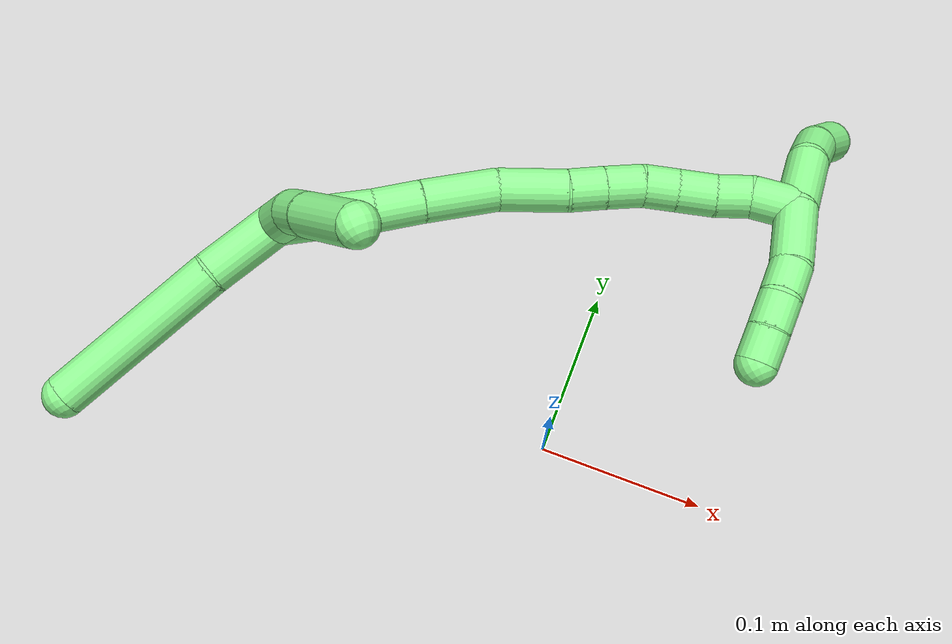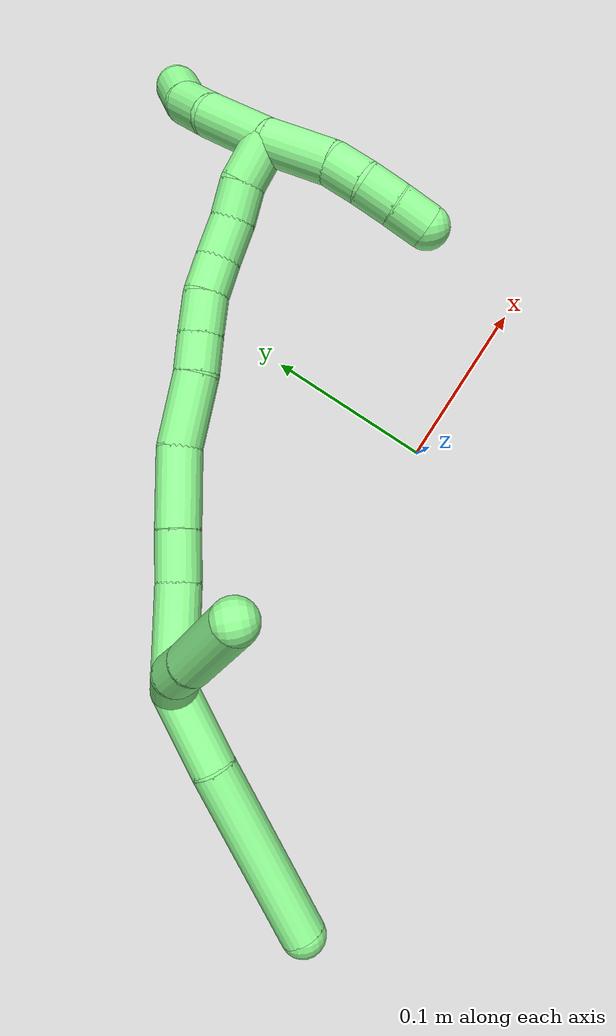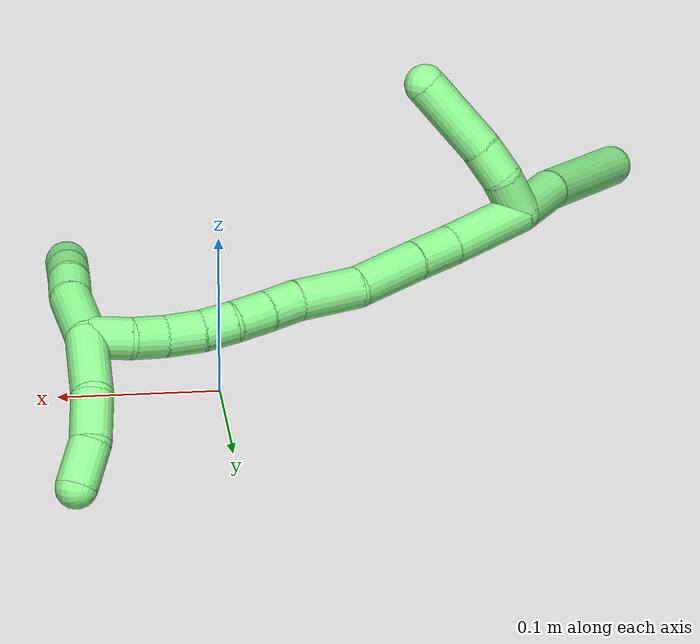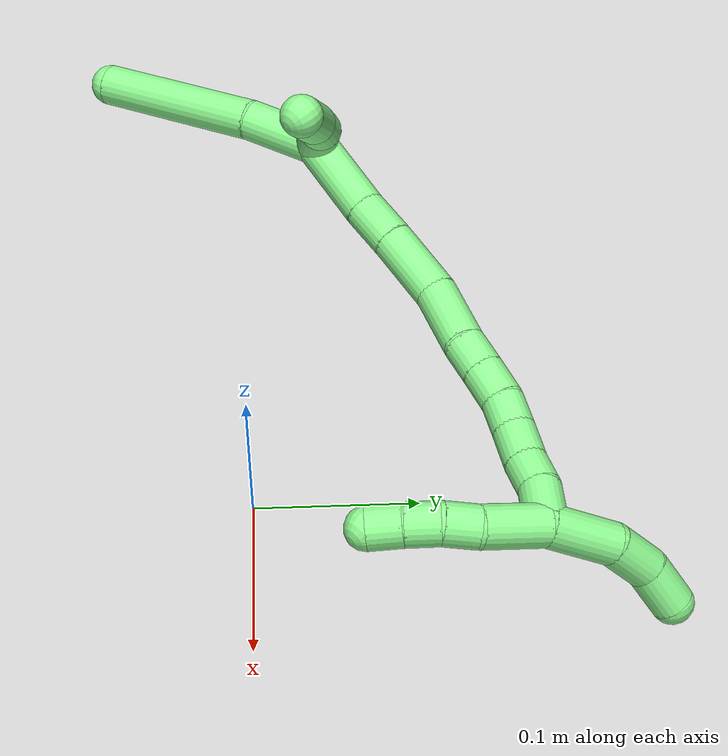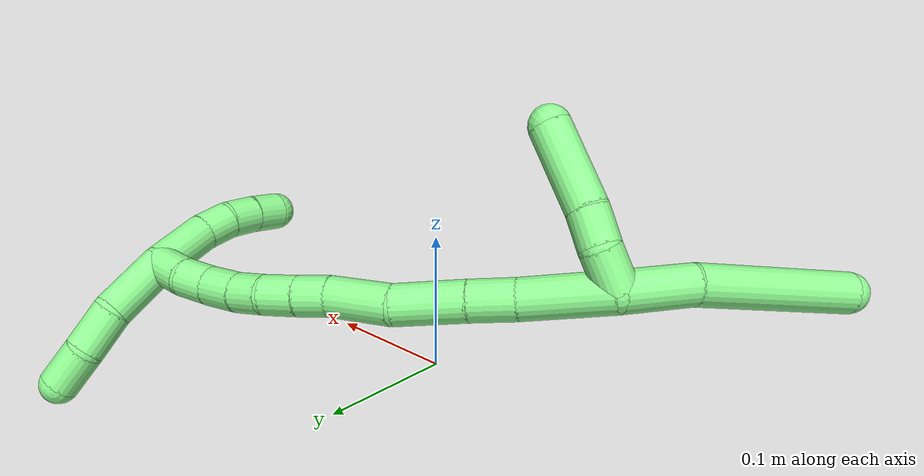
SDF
<sdf version="1.7">
 <world name="default">
  <model name="13">
   <static>0</static>
   <link name="13">
    <collision name="collision-cylinder-e_1_2_8">
     <pose>-0.018952 -0.011166 -0.006001 2.06396 -0.981265 -1.45852</pose>
     <geometry><cylinder><radius>0.0125</radius><length>0.045602</length></cylinder></geometry>
     <surface>
      <friction><ode><mu>1.16</mu><mu2>1.16</mu2><slip1>0</slip1><slip2>0</slip2></ode></friction>
      <contact><ode><kp>1e+06</kp><kd>1</kd><max_vel>0</max_vel><min_depth>0.001</min_depth></ode></contact>
     </surface>
    </collision>
    <visual name="visual-cylinder-e_1_2_8">
     <pose>-0.018952 -0.011166 -0.006001 2.06396 -0.981265 -1.45852</pose>
     <geometry><cylinder><radius>0.0125</radius><length>0.045602</length></cylinder></geometry>
     <material><ambient>0.564706 0.984314 0.572549 1</ambient></material>
    </visual>
    <collision name="collision-cylinder-e_2_8_6">
     <pose>-0.084639 -0.04089 -0.02601 2.21735 -1.10915 -1.78708</pose>
     <geometry><cylinder><radius>0.0125</radius><length>0.104398</length></cylinder></geometry>
     <surface>
      <friction><ode><mu>1.16</mu><mu2>1.16</mu2><slip1>0</slip1><slip2>0</slip2></ode></friction>
      <contact><ode><kp>1e+06</kp><kd>1</kd><max_vel>0</max_vel><min_depth>0.001</min_depth></ode></contact>
     </surface>
    </collision>
    <visual name="visual-cylinder-e_2_8_6">
     <pose>-0.084639 -0.04089 -0.02601 2.21735 -1.10915 -1.78708</pose>
     <geometry><cylinder><radius>0.0125</radius><length>0.104398</length></cylinder></geometry>
     <material><ambient>0.564706 0.984314 0.572549 1</ambient></material>
    </visual>
    <collision name="collision-cylinder-e_1_2_9">
     <pose>0.010587 -0.007589 -0.00234 1.86984 0.927205 1.19064</pose>
     <geometry><cylinder><radius>0.0125</radius><length>0.026469</length></cylinder></geometry>
     <surface>
      <friction><ode><mu>1.16</mu><mu2>1.16</mu2><slip1>0</slip1><slip2>0</slip2></ode></friction>
      <contact><ode><kp>1e+06</kp><kd>1</kd><max_vel>0</max_vel><min_depth>0.001</min_depth></ode></contact>
     </surface>
    </collision>
    <visual name="visual-cylinder-e_1_2_9">
     <pose>0.010587 -0.007589 -0.00234 1.86984 0.927205 1.19064</pose>
     <geometry><cylinder><radius>0.0125</radius><length>0.026469</length></cylinder></geometry>
     <material><ambient>0.564706 0.984314 0.572549 1</ambient></material>
    </visual>
    <collision name="collision-cylinder-e_2_9_10">
     <pose>0.028586 -0.021484 -0.00978 2.25095 0.740431 1.3654</pose>
     <geometry><cylinder><radius>0.0125</radius><length>0.021973</length></cylinder></geometry>
     <surface>
      <friction><ode><mu>1.16</mu><mu2>1.16</mu2><slip1>0</slip1><slip2>0</slip2></ode></friction>
      <contact><ode><kp>1e+06</kp><kd>1</kd><max_vel>0</max_vel><min_depth>0.001</min_depth></ode></contact>
     </surface>
    </collision>
    <visual name="visual-cylinder-e_2_9_10">
     <pose>0.028586 -0.021484 -0.00978 2.25095 0.740431 1.3654</pose>
     <geometry><cylinder><radius>0.0125</radius><length>0.021973</length></cylinder></geometry>
     <material><ambient>0.564706 0.984314 0.572549 1</ambient></material>
    </visual>
    <collision name="collision-cylinder-e_3_10_5">
     <pose>0.054371 -0.040184 -0.028046 2.38633 0.793398 1.62531</pose>
     <geometry><cylinder><radius>0.0125</radius><length>0.051558</length></cylinder></geometry>
     <surface>
      <friction><ode><mu>1.16</mu><mu2>1.16</mu2><slip1>0</slip1><slip2>0</slip2></ode></friction>
      <contact><ode><kp>1e+06</kp><kd>1</kd><max_vel>0</max_vel><min_depth>0.001</min_depth></ode></contact>
     </surface>
    </collision>
    <visual name="visual-cylinder-e_3_10_5">
     <pose>0.054371 -0.040184 -0.028046 2.38633 0.793398 1.62531</pose>
     <geometry><cylinder><radius>0.0125</radius><length>0.051558</length></cylinder></geometry>
     <material><ambient>0.564706 0.984314 0.572549 1</ambient></material>
    </visual>
    <collision name="collision-cylinder-e_1_2_11">
     <pose>0.020429 0.017316 -0.006005 -1.90458 0.839557 -1.12027</pose>
     <geometry><cylinder><radius>0.0125</radius><length>0.054891</length></cylinder></geometry>
     <surface>
      <friction><ode><mu>1.16</mu><mu2>1.16</mu2><slip1>0</slip1><slip2>0</slip2></ode></friction>
      <contact><ode><kp>1e+06</kp><kd>1</kd><max_vel>0</max_vel><min_depth>0.001</min_depth></ode></contact>
     </surface>
    </collision>
    <visual name="visual-cylinder-e_1_2_11">
     <pose>0.020429 0.017316 -0.006005 -1.90458 0.839557 -1.12027</pose>
     <geometry><cylinder><radius>0.0125</radius><length>0.054891</length></cylinder></geometry>
     <material><ambient>0.564706 0.984314 0.572549 1</ambient></material>
    </visual>
    <collision name="collision-cylinder-e_2_11_12">
     <pose>0.051936 0.04289 -0.014499 -1.86368 0.909287 -1.16386</pose>
     <geometry><cylinder><radius>0.0125</radius><length>0.028078</length></cylinder></geometry>
     <surface>
      <friction><ode><mu>1.16</mu><mu2>1.16</mu2><slip1>0</slip1><slip2>0</slip2></ode></friction>
      <contact><ode><kp>1e+06</kp><kd>1</kd><max_vel>0</max_vel><min_depth>0.001</min_depth></ode></contact>
     </surface>
    </collision>
    <visual name="visual-cylinder-e_2_11_12">
     <pose>0.051936 0.04289 -0.014499 -1.86368 0.909287 -1.16386</pose>
     <geometry><cylinder><radius>0.0125</radius><length>0.028078</length></cylinder></geometry>
     <material><ambient>0.564706 0.984314 0.572549 1</ambient></material>
    </visual>
    <collision name="collision-cylinder-e_3_12_13">
     <pose>0.079851 0.064621 -0.021352 -1.88396 0.871434 -1.13879</pose>
     <geometry><cylinder><radius>0.0125</radius><length>0.044004</length></cylinder></geometry>
     <surface>
      <friction><ode><mu>1.16</mu><mu2>1.16</mu2><slip1>0</slip1><slip2>0</slip2></ode></friction>
      <contact><ode><kp>1e+06</kp><kd>1</kd><max_vel>0</max_vel><min_depth>0.001</min_depth></ode></contact>
     </surface>
    </collision>
    <visual name="visual-cylinder-e_3_12_13">
     <pose>0.079851 0.064621 -0.021352 -1.88396 0.871434 -1.13879</pose>
     <geometry><cylinder><radius>0.0125</radius><length>0.044004</length></cylinder></geometry>
     <material><ambient>0.564706 0.984314 0.572549 1</ambient></material>
    </visual>
    <collision name="collision-cylinder-e_4_13_14">
     <pose>0.112192 0.087878 -0.033795 -2.26115 0.885016 -1.57671</pose>
     <geometry><cylinder><radius>0.0125</radius><length>0.040068</length></cylinder></geometry>
     <surface>
      <friction><ode><mu>1.16</mu><mu2>1.16</mu2><slip1>0</slip1><slip2>0</slip2></ode></friction>
      <contact><ode><kp>1e+06</kp><kd>1</kd><max_vel>0</max_vel><min_depth>0.001</min_depth></ode></contact>
     </surface>
    </collision>
    <visual name="visual-cylinder-e_4_13_14">
     <pose>0.112192 0.087878 -0.033795 -2.26115 0.885016 -1.57671</pose>
     <geometry><cylinder><radius>0.0125</radius><length>0.040068</length></cylinder></geometry>
     <material><ambient>0.564706 0.984314 0.572549 1</ambient></material>
    </visual>
    <collision name="collision-cylinder-e_5_14_15">
     <pose>0.135759 0.103723 -0.044919 -2.03616 0.871162 -1.29271</pose>
     <geometry><cylinder><radius>0.0125</radius><length>0.021074</length></cylinder></geometry>
     <surface>
      <friction><ode><mu>1.16</mu><mu2>1.16</mu2><slip1>0</slip1><slip2>0</slip2></ode></friction>
      <contact><ode><kp>1e+06</kp><kd>1</kd><max_vel>0</max_vel><min_depth>0.001</min_depth></ode></contact>
     </surface>
    </collision>
    <visual name="visual-cylinder-e_5_14_15">
     <pose>0.135759 0.103723 -0.044919 -2.03616 0.871162 -1.29271</pose>
     <geometry><cylinder><radius>0.0125</radius><length>0.021074</length></cylinder></geometry>
     <material><ambient>0.564706 0.984314 0.572549 1</ambient></material>
    </visual>
    <collision name="collision-cylinder-e_6_15_16">
     <pose>0.1525 0.116055 -0.051508 -2.08545 0.878272 -1.35586</pose>
     <geometry><cylinder><radius>0.0125</radius><length>0.022555</length></cylinder></geometry>
     <surface>
      <friction><ode><mu>1.16</mu><mu2>1.16</mu2><slip1>0</slip1><slip2>0</slip2></ode></friction>
      <contact><ode><kp>1e+06</kp><kd>1</kd><max_vel>0</max_vel><min_depth>0.001</min_depth></ode></contact>
     </surface>
    </collision>
    <visual name="visual-cylinder-e_6_15_16">
     <pose>0.1525 0.116055 -0.051508 -2.08545 0.878272 -1.35586</pose>
     <geometry><cylinder><radius>0.0125</radius><length>0.022555</length></cylinder></geometry>
     <material><ambient>0.564706 0.984314 0.572549 1</ambient></material>
    </visual>
    <collision name="collision-cylinder-e_7_16_17">
     <pose>0.168032 0.127774 -0.059909 -2.29855 0.75373 -1.44631</pose>
     <geometry><cylinder><radius>0.0125</radius><length>0.020025</length></cylinder></geometry>
     <surface>
      <friction><ode><mu>1.16</mu><mu2>1.16</mu2><slip1>0</slip1><slip2>0</slip2></ode></friction>
      <contact><ode><kp>1e+06</kp><kd>1</kd><max_vel>0</max_vel><min_depth>0.001</min_depth></ode></contact>
     </surface>
    </collision>
    <visual name="visual-cylinder-e_7_16_17">
     <pose>0.168032 0.127774 -0.059909 -2.29855 0.75373 -1.44631</pose>
     <geometry><cylinder><radius>0.0125</radius><length>0.020025</length></cylinder></geometry>
     <material><ambient>0.564706 0.984314 0.572549 1</ambient></material>
    </visual>
    <collision name="collision-cylinder-e_8_17_18">
     <pose>0.183269 0.138244 -0.070761 -2.44471 0.820313 -1.74964</pose>
     <geometry><cylinder><radius>0.0125</radius><length>0.02293</length></cylinder></geometry>
     <surface>
      <friction><ode><mu>1.16</mu><mu2>1.16</mu2><slip1>0</slip1><slip2>0</slip2></ode></friction>
      <contact><ode><kp>1e+06</kp><kd>1</kd><max_vel>0</max_vel><min_depth>0.001</min_depth></ode></contact>
     </surface>
    </collision>
    <visual name="visual-cylinder-e_8_17_18">
     <pose>0.183269 0.138244 -0.070761 -2.44471 0.820313 -1.74964</pose>
     <geometry><cylinder><radius>0.0125</radius><length>0.02293</length></cylinder></geometry>
     <material><ambient>0.564706 0.984314 0.572549 1</ambient></material>
    </visual>
    <collision name="collision-cylinder-e_9_18_19">
     <pose>0.199968 0.146902 -0.081287 -2.46477 0.960736 -1.95351</pose>
     <geometry><cylinder><radius>0.0125</radius><length>0.020286</length></cylinder></geometry>
     <surface>
      <friction><ode><mu>1.16</mu><mu2>1.16</mu2><slip1>0</slip1><slip2>0</slip2></ode></friction>
      <contact><ode><kp>1e+06</kp><kd>1</kd><max_vel>0</max_vel><min_depth>0.001</min_depth></ode></contact>
     </surface>
    </collision>
    <visual name="visual-cylinder-e_9_18_19">
     <pose>0.199968 0.146902 -0.081287 -2.46477 0.960736 -1.95351</pose>
     <geometry><cylinder><radius>0.0125</radius><length>0.020286</length></cylinder></geometry>
     <material><ambient>0.564706 0.984314 0.572549 1</ambient></material>
    </visual>
    <collision name="collision-cylinder-e_10_19_1">
     <pose>0.217482 0.154245 -0.09429 -2.72949 0.782902 -2.20408</pose>
     <geometry><cylinder><radius>0.0125</radius><length>0.026088</length></cylinder></geometry>
     <surface>
      <friction><ode><mu>1.16</mu><mu2>1.16</mu2><slip1>0</slip1><slip2>0</slip2></ode></friction>
      <contact><ode><kp>1e+06</kp><kd>1</kd><max_vel>0</max_vel><min_depth>0.001</min_depth></ode></contact>
     </surface>
    </collision>
    <visual name="visual-cylinder-e_10_19_1">
     <pose>0.217482 0.154245 -0.09429 -2.72949 0.782902 -2.20408</pose>
     <geometry><cylinder><radius>0.0125</radius><length>0.026088</length></cylinder></geometry>
     <material><ambient>0.564706 0.984314 0.572549 1</ambient></material>
    </visual>
    <collision name="collision-cylinder-e_1_1_20">
     <pose>0.232008 0.173989 -0.089487 -0.879435 0.250423 -0.118289</pose>
     <geometry><cylinder><radius>0.0125</radius><length>0.042985</length></cylinder></geometry>
     <surface>
      <friction><ode><mu>1.16</mu><mu2>1.16</mu2><slip1>0</slip1><slip2>0</slip2></ode></friction>
      <contact><ode><kp>1e+06</kp><kd>1</kd><max_vel>0</max_vel><min_depth>0.001</min_depth></ode></contact>
     </surface>
    </collision>
    <visual name="visual-cylinder-e_1_1_20">
     <pose>0.232008 0.173989 -0.089487 -0.879435 0.250423 -0.118289</pose>
     <geometry><cylinder><radius>0.0125</radius><length>0.042985</length></cylinder></geometry>
     <material><ambient>0.564706 0.984314 0.572549 1</ambient></material>
    </visual>
    <collision name="collision-cylinder-e_2_20_21">
     <pose>0.238759 0.203244 -0.070302 -1.15033 0.09812 -0.063639</pose>
     <geometry><cylinder><radius>0.0125</radius><length>0.029089</length></cylinder></geometry>
     <surface>
      <friction><ode><mu>1.16</mu><mu2>1.16</mu2><slip1>0</slip1><slip2>0</slip2></ode></friction>
      <contact><ode><kp>1e+06</kp><kd>1</kd><max_vel>0</max_vel><min_depth>0.001</min_depth></ode></contact>
     </surface>
    </collision>
    <visual name="visual-cylinder-e_2_20_21">
     <pose>0.238759 0.203244 -0.070302 -1.15033 0.09812 -0.063639</pose>
     <geometry><cylinder><radius>0.0125</radius><length>0.029089</length></cylinder></geometry>
     <material><ambient>0.564706 0.984314 0.572549 1</ambient></material>
    </visual>
    <collision name="collision-cylinder-e_3_21_4">
     <pose>0.242043 0.230188 -0.062667 -1.44565 0.133514 -0.117809</pose>
     <geometry><cylinder><radius>0.0125</radius><length>0.027925</length></cylinder></geometry>
     <surface>
      <friction><ode><mu>1.16</mu><mu2>1.16</mu2><slip1>0</slip1><slip2>0</slip2></ode></friction>
      <contact><ode><kp>1e+06</kp><kd>1</kd><max_vel>0</max_vel><min_depth>0.001</min_depth></ode></contact>
     </surface>
    </collision>
    <visual name="visual-cylinder-e_3_21_4">
     <pose>0.242043 0.230188 -0.062667 -1.44565 0.133514 -0.117809</pose>
     <geometry><cylinder><radius>0.0125</radius><length>0.027925</length></cylinder></geometry>
     <material><ambient>0.564706 0.984314 0.572549 1</ambient></material>
    </visual>
    <collision name="collision-cylinder-e_1_1_22">
     <pose>0.220522 0.147678 -0.118299 2.55748 -0.319451 -0.983798</pose>
     <geometry><cylinder><radius>0.0125</radius><length>0.039232</length></cylinder></geometry>
     <surface>
      <friction><ode><mu>1.16</mu><mu2>1.16</mu2><slip1>0</slip1><slip2>0</slip2></ode></friction>
      <contact><ode><kp>1e+06</kp><kd>1</kd><max_vel>0</max_vel><min_depth>0.001</min_depth></ode></contact>
     </surface>
    </collision>
    <visual name="visual-cylinder-e_1_1_22">
     <pose>0.220522 0.147678 -0.118299 2.55748 -0.319451 -0.983798</pose>
     <geometry><cylinder><radius>0.0125</radius><length>0.039232</length></cylinder></geometry>
     <material><ambient>0.564706 0.984314 0.572549 1</ambient></material>
    </visual>
    <collision name="collision-cylinder-e_2_22_23">
     <pose>0.209351 0.131828 -0.140839 2.4689 -0.510134 -1.28158</pose>
     <geometry><cylinder><radius>0.0125</radius><length>0.020523</length></cylinder></geometry>
     <surface>
      <friction><ode><mu>1.16</mu><mu2>1.16</mu2><slip1>0</slip1><slip2>0</slip2></ode></friction>
      <contact><ode><kp>1e+06</kp><kd>1</kd><max_vel>0</max_vel><min_depth>0.001</min_depth></ode></contact>
     </surface>
    </collision>
    <visual name="visual-cylinder-e_2_22_23">
     <pose>0.209351 0.131828 -0.140839 2.4689 -0.510134 -1.28158</pose>
     <geometry><cylinder><radius>0.0125</radius><length>0.020523</length></cylinder></geometry>
     <material><ambient>0.564706 0.984314 0.572549 1</ambient></material>
    </visual>
    <collision name="collision-cylinder-e_3_23_24">
     <pose>0.198192 0.122654 -0.154995 2.67591 -0.655027 -1.92285</pose>
     <geometry><cylinder><radius>0.0125</radius><length>0.020187</length></cylinder></geometry>
     <surface>
      <friction><ode><mu>1.16</mu><mu2>1.16</mu2><slip1>0</slip1><slip2>0</slip2></ode></friction>
      <contact><ode><kp>1e+06</kp><kd>1</kd><max_vel>0</max_vel><min_depth>0.001</min_depth></ode></contact>
     </surface>
    </collision>
    <visual name="visual-cylinder-e_3_23_24">
     <pose>0.198192 0.122654 -0.154995 2.67591 -0.655027 -1.92285</pose>
     <geometry><cylinder><radius>0.0125</radius><length>0.020187</length></cylinder></geometry>
     <material><ambient>0.564706 0.984314 0.572549 1</ambient></material>
    </visual>
    <collision name="collision-cylinder-e_4_24_3">
     <pose>0.185506 0.116232 -0.169207 2.7606 -0.709942 -2.1822</pose>
     <geometry><cylinder><radius>0.0125</radius><length>0.020058</length></cylinder></geometry>
     <surface>
      <friction><ode><mu>1.16</mu><mu2>1.16</mu2><slip1>0</slip1><slip2>0</slip2></ode></friction>
      <contact><ode><kp>1e+06</kp><kd>1</kd><max_vel>0</max_vel><min_depth>0.001</min_depth></ode></contact>
     </surface>
    </collision>
    <visual name="visual-cylinder-e_4_24_3">
     <pose>0.185506 0.116232 -0.169207 2.7606 -0.709942 -2.1822</pose>
     <geometry><cylinder><radius>0.0125</radius><length>0.020058</length></cylinder></geometry>
     <material><ambient>0.564706 0.984314 0.572549 1</ambient></material>
    </visual>
    <collision name="collision-sphere-3">
     <pose>0.178969 0.113404 -0.176268 0 -0 0</pose>
     <geometry><sphere><radius>0.0125</radius></sphere></geometry>
     <surface>
      <friction><ode><mu>1.16</mu><mu2>1.16</mu2><slip1>0</slip1><slip2>0</slip2></ode></friction>
      <contact><ode><kp>1e+06</kp><kd>1</kd><max_vel>0</max_vel><min_depth>0.001</min_depth></ode></contact>
     </surface>
    </collision>
    <visual name="visual-sphere-3">
     <pose>0.178969 0.113404 -0.176268 0 -0 0</pose>
     <geometry><sphere><radius>0.0125</radius></sphere></geometry>
     <material><ambient>0.564706 0.984314 0.572549 1</ambient></material>
    </visual>
    <collision name="collision-sphere-24">
     <pose>0.192043 0.11906 -0.162147 0 -0 0</pose>
     <geometry><sphere><radius>0.0125</radius></sphere></geometry>
     <surface>
      <friction><ode><mu>1.16</mu><mu2>1.16</mu2><slip1>0</slip1><slip2>0</slip2></ode></friction>
      <contact><ode><kp>1e+06</kp><kd>1</kd><max_vel>0</max_vel><min_depth>0.001</min_depth></ode></contact>
     </surface>
    </collision>
    <visual name="visual-sphere-24">
     <pose>0.192043 0.11906 -0.162147 0 -0 0</pose>
     <geometry><sphere><radius>0.0125</radius></sphere></geometry>
     <material><ambient>0.564706 0.984314 0.572549 1</ambient></material>
    </visual>
    <collision name="collision-sphere-23">
     <pose>0.20434 0.126249 -0.147843 0 -0 0</pose>
     <geometry><sphere><radius>0.0125</radius></sphere></geometry>
     <surface>
      <friction><ode><mu>1.16</mu><mu2>1.16</mu2><slip1>0</slip1><slip2>0</slip2></ode></friction>
      <contact><ode><kp>1e+06</kp><kd>1</kd><max_vel>0</max_vel><min_depth>0.001</min_depth></ode></contact>
     </surface>
    </collision>
    <visual name="visual-sphere-23">
     <pose>0.20434 0.126249 -0.147843 0 -0 0</pose>
     <geometry><sphere><radius>0.0125</radius></sphere></geometry>
     <material><ambient>0.564706 0.984314 0.572549 1</ambient></material>
    </visual>
    <collision name="collision-sphere-22">
     <pose>0.214362 0.137408 -0.133835 0 -0 0</pose>
     <geometry><sphere><radius>0.0125</radius></sphere></geometry>
     <surface>
      <friction><ode><mu>1.16</mu><mu2>1.16</mu2><slip1>0</slip1><slip2>0</slip2></ode></friction>
      <contact><ode><kp>1e+06</kp><kd>1</kd><max_vel>0</max_vel><min_depth>0.001</min_depth></ode></contact>
     </surface>
    </collision>
    <visual name="visual-sphere-22">
     <pose>0.214362 0.137408 -0.133835 0 -0 0</pose>
     <geometry><sphere><radius>0.0125</radius></sphere></geometry>
     <material><ambient>0.564706 0.984314 0.572549 1</ambient></material>
    </visual>
    <collision name="collision-sphere-4">
     <pose>0.243902 0.243919 -0.060939 0 -0 0</pose>
     <geometry><sphere><radius>0.0125</radius></sphere></geometry>
     <surface>
      <friction><ode><mu>1.16</mu><mu2>1.16</mu2><slip1>0</slip1><slip2>0</slip2></ode></friction>
      <contact><ode><kp>1e+06</kp><kd>1</kd><max_vel>0</max_vel><min_depth>0.001</min_depth></ode></contact>
     </surface>
    </collision>
    <visual name="visual-sphere-4">
     <pose>0.243902 0.243919 -0.060939 0 -0 0</pose>
     <geometry><sphere><radius>0.0125</radius></sphere></geometry>
     <material><ambient>0.564706 0.984314 0.572549 1</ambient></material>
    </visual>
    <collision name="collision-sphere-21">
     <pose>0.240184 0.216458 -0.064394 0 -0 0</pose>
     <geometry><sphere><radius>0.0125</radius></sphere></geometry>
     <surface>
      <friction><ode><mu>1.16</mu><mu2>1.16</mu2><slip1>0</slip1><slip2>0</slip2></ode></friction>
      <contact><ode><kp>1e+06</kp><kd>1</kd><max_vel>0</max_vel><min_depth>0.001</min_depth></ode></contact>
     </surface>
    </collision>
    <visual name="visual-sphere-21">
     <pose>0.240184 0.216458 -0.064394 0 -0 0</pose>
     <geometry><sphere><radius>0.0125</radius></sphere></geometry>
     <material><ambient>0.564706 0.984314 0.572549 1</ambient></material>
    </visual>
    <collision name="collision-sphere-20">
     <pose>0.237335 0.19003 -0.076211 0 -0 0</pose>
     <geometry><sphere><radius>0.0125</radius></sphere></geometry>
     <surface>
      <friction><ode><mu>1.16</mu><mu2>1.16</mu2><slip1>0</slip1><slip2>0</slip2></ode></friction>
      <contact><ode><kp>1e+06</kp><kd>1</kd><max_vel>0</max_vel><min_depth>0.001</min_depth></ode></contact>
     </surface>
    </collision>
    <visual name="visual-sphere-20">
     <pose>0.237335 0.19003 -0.076211 0 -0 0</pose>
     <geometry><sphere><radius>0.0125</radius></sphere></geometry>
     <material><ambient>0.564706 0.984314 0.572549 1</ambient></material>
    </visual>
    <collision name="collision-sphere-5">
     <pose>0.072744 -0.052579 -0.041211 0 -0 0</pose>
     <geometry><sphere><radius>0.0125</radius></sphere></geometry>
     <surface>
      <friction><ode><mu>1.16</mu><mu2>1.16</mu2><slip1>0</slip1><slip2>0</slip2></ode></friction>
      <contact><ode><kp>1e+06</kp><kd>1</kd><max_vel>0</max_vel><min_depth>0.001</min_depth></ode></contact>
     </surface>
    </collision>
    <visual name="visual-sphere-5">
     <pose>0.072744 -0.052579 -0.041211 0 -0 0</pose>
     <geometry><sphere><radius>0.0125</radius></sphere></geometry>
     <material><ambient>0.564706 0.984314 0.572549 1</ambient></material>
    </visual>
    <collision name="collision-sphere-10">
     <pose>0.035997 -0.027789 -0.01488 0 -0 0</pose>
     <geometry><sphere><radius>0.0125</radius></sphere></geometry>
     <surface>
      <friction><ode><mu>1.16</mu><mu2>1.16</mu2><slip1>0</slip1><slip2>0</slip2></ode></friction>
      <contact><ode><kp>1e+06</kp><kd>1</kd><max_vel>0</max_vel><min_depth>0.001</min_depth></ode></contact>
     </surface>
    </collision>
    <visual name="visual-sphere-10">
     <pose>0.035997 -0.027789 -0.01488 0 -0 0</pose>
     <geometry><sphere><radius>0.0125</radius></sphere></geometry>
     <material><ambient>0.564706 0.984314 0.572549 1</ambient></material>
    </visual>
    <collision name="collision-sphere-6">
     <pose>-0.131374 -0.059448 -0.040017 0 -0 0</pose>
     <geometry><sphere><radius>0.0125</radius></sphere></geometry>
     <surface>
      <friction><ode><mu>1.16</mu><mu2>1.16</mu2><slip1>0</slip1><slip2>0</slip2></ode></friction>
      <contact><ode><kp>1e+06</kp><kd>1</kd><max_vel>0</max_vel><min_depth>0.001</min_depth></ode></contact>
     </surface>
    </collision>
    <visual name="visual-sphere-6">
     <pose>-0.131374 -0.059448 -0.040017 0 -0 0</pose>
     <geometry><sphere><radius>0.0125</radius></sphere></geometry>
     <material><ambient>0.564706 0.984314 0.572549 1</ambient></material>
    </visual>
    <collision name="collision-sphere-9">
     <pose>0.021174 -0.015179 -0.004679 0 -0 0</pose>
     <geometry><sphere><radius>0.0125</radius></sphere></geometry>
     <surface>
      <friction><ode><mu>1.16</mu><mu2>1.16</mu2><slip1>0</slip1><slip2>0</slip2></ode></friction>
      <contact><ode><kp>1e+06</kp><kd>1</kd><max_vel>0</max_vel><min_depth>0.001</min_depth></ode></contact>
     </surface>
    </collision>
    <visual name="visual-sphere-9">
     <pose>0.021174 -0.015179 -0.004679 0 -0 0</pose>
     <geometry><sphere><radius>0.0125</radius></sphere></geometry>
     <material><ambient>0.564706 0.984314 0.572549 1</ambient></material>
    </visual>
    <collision name="collision-sphere-2">
     <geometry><sphere><radius>0.0125</radius></sphere></geometry>
     <surface>
      <friction><ode><mu>1.16</mu><mu2>1.16</mu2><slip1>0</slip1><slip2>0</slip2></ode></friction>
      <contact><ode><kp>1e+06</kp><kd>1</kd><max_vel>0</max_vel><min_depth>0.001</min_depth></ode></contact>
     </surface>
    </collision>
    <visual name="visual-sphere-2">
     <geometry><sphere><radius>0.0125</radius></sphere></geometry>
     <material><ambient>0.564706 0.984314 0.572549 1</ambient></material>
    </visual>
    <collision name="collision-sphere-19">
     <pose>0.208281 0.150541 -0.085818 0 -0 0</pose>
     <geometry><sphere><radius>0.0125</radius></sphere></geometry>
     <surface>
      <friction><ode><mu>1.16</mu><mu2>1.16</mu2><slip1>0</slip1><slip2>0</slip2></ode></friction>
      <contact><ode><kp>1e+06</kp><kd>1</kd><max_vel>0</max_vel><min_depth>0.001</min_depth></ode></contact>
     </surface>
    </collision>
    <visual name="visual-sphere-19">
     <pose>0.208281 0.150541 -0.085818 0 -0 0</pose>
     <geometry><sphere><radius>0.0125</radius></sphere></geometry>
     <material><ambient>0.564706 0.984314 0.572549 1</ambient></material>
    </visual>
    <collision name="collision-sphere-8">
     <pose>-0.037904 -0.022332 -0.012003 0 -0 0</pose>
     <geometry><sphere><radius>0.0125</radius></sphere></geometry>
     <surface>
      <friction><ode><mu>1.16</mu><mu2>1.16</mu2><slip1>0</slip1><slip2>0</slip2></ode></friction>
      <contact><ode><kp>1e+06</kp><kd>1</kd><max_vel>0</max_vel><min_depth>0.001</min_depth></ode></contact>
     </surface>
    </collision>
    <visual name="visual-sphere-8">
     <pose>-0.037904 -0.022332 -0.012003 0 -0 0</pose>
     <geometry><sphere><radius>0.0125</radius></sphere></geometry>
     <material><ambient>0.564706 0.984314 0.572549 1</ambient></material>
    </visual>
    <collision name="collision-sphere-11">
     <pose>0.040858 0.034633 -0.012009 0 -0 0</pose>
     <geometry><sphere><radius>0.0125</radius></sphere></geometry>
     <surface>
      <friction><ode><mu>1.16</mu><mu2>1.16</mu2><slip1>0</slip1><slip2>0</slip2></ode></friction>
      <contact><ode><kp>1e+06</kp><kd>1</kd><max_vel>0</max_vel><min_depth>0.001</min_depth></ode></contact>
     </surface>
    </collision>
    <visual name="visual-sphere-11">
     <pose>0.040858 0.034633 -0.012009 0 -0 0</pose>
     <geometry><sphere><radius>0.0125</radius></sphere></geometry>
     <material><ambient>0.564706 0.984314 0.572549 1</ambient></material>
    </visual>
    <collision name="collision-sphere-12">
     <pose>0.063014 0.051147 -0.016989 0 -0 0</pose>
     <geometry><sphere><radius>0.0125</radius></sphere></geometry>
     <surface>
      <friction><ode><mu>1.16</mu><mu2>1.16</mu2><slip1>0</slip1><slip2>0</slip2></ode></friction>
      <contact><ode><kp>1e+06</kp><kd>1</kd><max_vel>0</max_vel><min_depth>0.001</min_depth></ode></contact>
     </surface>
    </collision>
    <visual name="visual-sphere-12">
     <pose>0.063014 0.051147 -0.016989 0 -0 0</pose>
     <geometry><sphere><radius>0.0125</radius></sphere></geometry>
     <material><ambient>0.564706 0.984314 0.572549 1</ambient></material>
    </visual>
    <collision name="collision-sphere-13">
     <pose>0.096687 0.078096 -0.025716 0 -0 0</pose>
     <geometry><sphere><radius>0.0125</radius></sphere></geometry>
     <surface>
      <friction><ode><mu>1.16</mu><mu2>1.16</mu2><slip1>0</slip1><slip2>0</slip2></ode></friction>
      <contact><ode><kp>1e+06</kp><kd>1</kd><max_vel>0</max_vel><min_depth>0.001</min_depth></ode></contact>
     </surface>
    </collision>
    <visual name="visual-sphere-13">
     <pose>0.096687 0.078096 -0.025716 0 -0 0</pose>
     <geometry><sphere><radius>0.0125</radius></sphere></geometry>
     <material><ambient>0.564706 0.984314 0.572549 1</ambient></material>
    </visual>
    <collision name="collision-sphere-14">
     <pose>0.127697 0.09766 -0.041874 0 -0 0</pose>
     <geometry><sphere><radius>0.0125</radius></sphere></geometry>
     <surface>
      <friction><ode><mu>1.16</mu><mu2>1.16</mu2><slip1>0</slip1><slip2>0</slip2></ode></friction>
      <contact><ode><kp>1e+06</kp><kd>1</kd><max_vel>0</max_vel><min_depth>0.001</min_depth></ode></contact>
     </surface>
    </collision>
    <visual name="visual-sphere-14">
     <pose>0.127697 0.09766 -0.041874 0 -0 0</pose>
     <geometry><sphere><radius>0.0125</radius></sphere></geometry>
     <material><ambient>0.564706 0.984314 0.572549 1</ambient></material>
    </visual>
    <collision name="collision-sphere-15">
     <pose>0.143821 0.109787 -0.047964 0 -0 0</pose>
     <geometry><sphere><radius>0.0125</radius></sphere></geometry>
     <surface>
      <friction><ode><mu>1.16</mu><mu2>1.16</mu2><slip1>0</slip1><slip2>0</slip2></ode></friction>
      <contact><ode><kp>1e+06</kp><kd>1</kd><max_vel>0</max_vel><min_depth>0.001</min_depth></ode></contact>
     </surface>
    </collision>
    <visual name="visual-sphere-15">
     <pose>0.143821 0.109787 -0.047964 0 -0 0</pose>
     <geometry><sphere><radius>0.0125</radius></sphere></geometry>
     <material><ambient>0.564706 0.984314 0.572549 1</ambient></material>
    </visual>
    <collision name="collision-sphere-16">
     <pose>0.16118 0.122323 -0.055052 0 -0 0</pose>
     <geometry><sphere><radius>0.0125</radius></sphere></geometry>
     <surface>
      <friction><ode><mu>1.16</mu><mu2>1.16</mu2><slip1>0</slip1><slip2>0</slip2></ode></friction>
      <contact><ode><kp>1e+06</kp><kd>1</kd><max_vel>0</max_vel><min_depth>0.001</min_depth></ode></contact>
     </surface>
    </collision>
    <visual name="visual-sphere-16">
     <pose>0.16118 0.122323 -0.055052 0 -0 0</pose>
     <geometry><sphere><radius>0.0125</radius></sphere></geometry>
     <material><ambient>0.564706 0.984314 0.572549 1</ambient></material>
    </visual>
    <collision name="collision-sphere-17">
     <pose>0.174884 0.133225 -0.064765 0 -0 0</pose>
     <geometry><sphere><radius>0.0125</radius></sphere></geometry>
     <surface>
      <friction><ode><mu>1.16</mu><mu2>1.16</mu2><slip1>0</slip1><slip2>0</slip2></ode></friction>
      <contact><ode><kp>1e+06</kp><kd>1</kd><max_vel>0</max_vel><min_depth>0.001</min_depth></ode></contact>
     </surface>
    </collision>
    <visual name="visual-sphere-17">
     <pose>0.174884 0.133225 -0.064765 0 -0 0</pose>
     <geometry><sphere><radius>0.0125</radius></sphere></geometry>
     <material><ambient>0.564706 0.984314 0.572549 1</ambient></material>
    </visual>
    <collision name="collision-sphere-18">
     <pose>0.191655 0.143262 -0.076757 0 -0 0</pose>
     <geometry><sphere><radius>0.0125</radius></sphere></geometry>
     <surface>
      <friction><ode><mu>1.16</mu><mu2>1.16</mu2><slip1>0</slip1><slip2>0</slip2></ode></friction>
      <contact><ode><kp>1e+06</kp><kd>1</kd><max_vel>0</max_vel><min_depth>0.001</min_depth></ode></contact>
     </surface>
    </collision>
    <visual name="visual-sphere-18">
     <pose>0.191655 0.143262 -0.076757 0 -0 0</pose>
     <geometry><sphere><radius>0.0125</radius></sphere></geometry>
     <material><ambient>0.564706 0.984314 0.572549 1</ambient></material>
    </visual>
    <collision name="collision-sphere-1">
     <pose>0.226682 0.157948 -0.102763 0 -0 0</pose>
     <geometry><sphere><radius>0.0125</radius></sphere></geometry>
     <surface>
      <friction><ode><mu>1.16</mu><mu2>1.16</mu2><slip1>0</slip1><slip2>0</slip2></ode></friction>
      <contact><ode><kp>1e+06</kp><kd>1</kd><max_vel>0</max_vel><min_depth>0.001</min_depth></ode></contact>
     </surface>
    </collision>
    <visual name="visual-sphere-1">
     <pose>0.226682 0.157948 -0.102763 0 -0 0</pose>
     <geometry><sphere><radius>0.0125</radius></sphere></geometry>
     <material><ambient>0.564706 0.984314 0.572549 1</ambient></material>
    </visual>
    <inertial>
     <pose>0.096727 0.068878 -0.051304 0 -0 0</pose>
     <mass>0.75</mass>
     <inertia><ixx>-4.8e-05</ixx><ixy>0</ixy><ixz>0</ixz><iyy>6.3e-05</iyy><iyz>0</iyz><izz>5.1e-05</izz></inertia>
    </inertial>
   </link>
   <pose>-0.178553 0.043178 0.126296 -1.51758 -0.538837 0.744968</pose>
  </model>
 </world>
</sdf>
